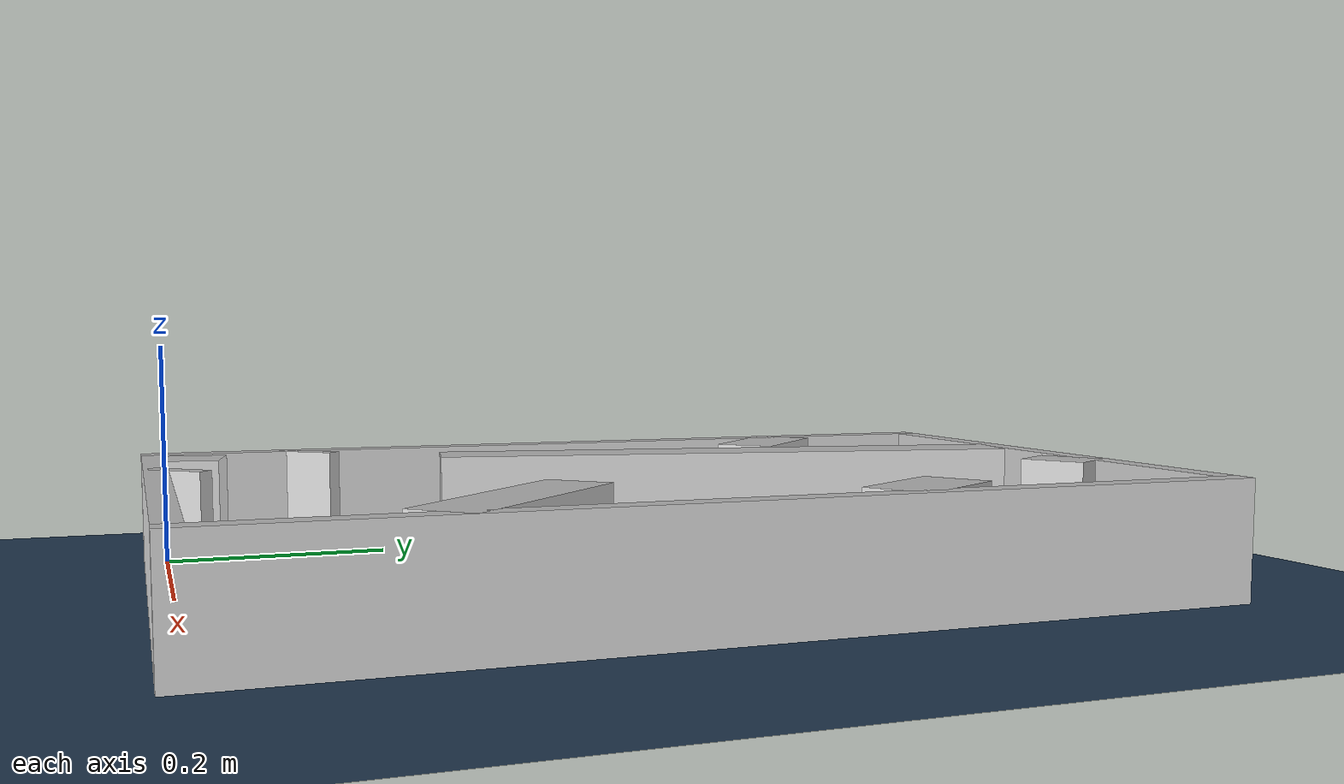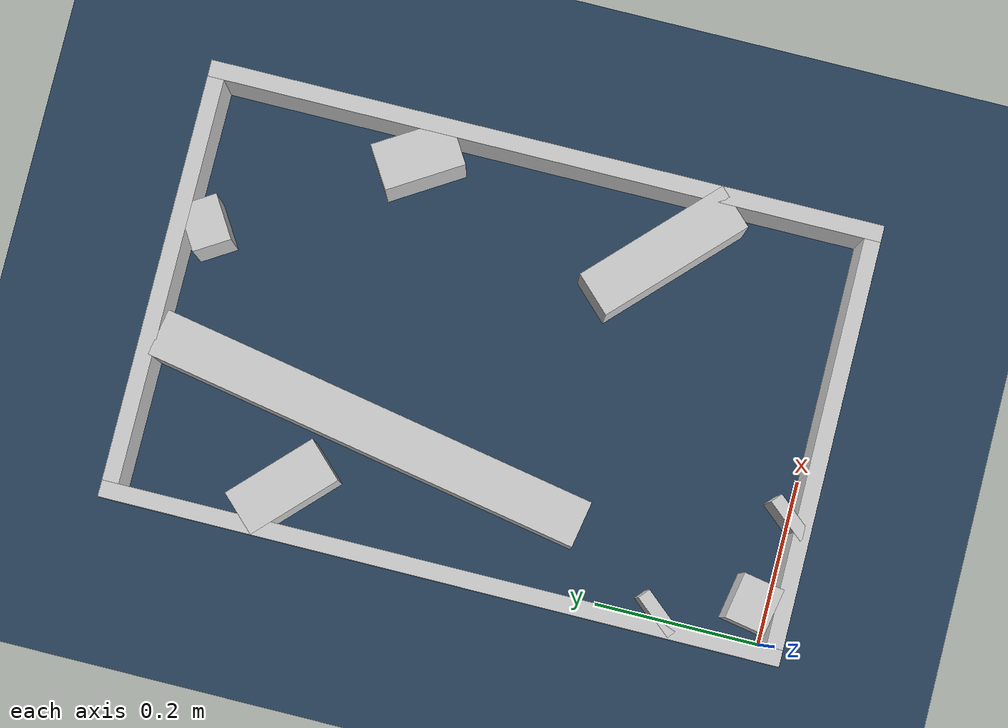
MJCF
<?xml version="1.0" ?>
<mujoco model="generated_real_template">
  <compiler angle="degree"/>
  <option timestep="0.002" integrator="implicitfast" iterations="100" cone="elliptic"/>
  <default>
    <geom density="1"/>
  </default>
  <asset>
    <texture builtin="gradient" height="3072" rgb1="0.3 0.5 0.7" rgb2="0 0 0" type="skybox" width="512"/>
    <texture builtin="checker" height="300" mark="edge" markrgb="0.8 0.8 0.8" name="groundplane" rgb1="0.2 0.3 0.4" rgb2="0.1 0.2 0.3" type="2d" width="300"/>
    <material name="groundplane" reflectance="0.2" texrepeat="5 5" texture="groundplane" texuniform="true"/>
  </asset>
  <worldbody>
    <light dir="0 0 -1" directional="true" pos="0 0 1.5"/>
    <geom name="floor" type="plane" condim="4" friction="0.5 0.005 0.001" material="groundplane" size="0 0 0.05"/>
    <body name="walls">
      <geom name="wall_boundary_left" type="box" condim="4" friction="1.0 0.005 0.0001" rgba="0.8 0.8 0.8 1" pos="-0.010000 0.387500 0.050000" euler="0 0 0.000000" size="0.010000 0.407500 0.050000"/>
      <geom name="wall_boundary_right" type="box" condim="4" friction="1.0 0.005 0.0001" rgba="0.8 0.8 0.8 1" pos="0.500000 0.387500 0.050000" euler="0 0 0.000000" size="0.010000 0.407500 0.050000"/>
      <geom name="wall_boundary_bottom" type="box" condim="4" friction="1.0 0.005 0.0001" rgba="0.8 0.8 0.8 1" pos="0.245000 -0.010000 0.050000" euler="0 0 0.000000" size="0.245000 0.010000 0.050000"/>
      <geom name="wall_boundary_top" type="box" condim="4" friction="1.0 0.005 0.0001" rgba="0.8 0.8 0.8 1" pos="0.245000 0.785000 0.050000" euler="0 0 0.000000" size="0.245000 0.010000 0.050000"/>
      <geom name="wall_inner_1_1" type="box" condim="4" friction="1.0 0.005 0.0001" rgba="0.8 0.8 0.8 1" pos="0.006152 0.129946 0.050000" euler="0 0 -40.334433" size="0.008070 0.028500 0.050000"/>
      <geom name="wall_inner_1_2" type="box" condim="4" friction="1.0 0.005 0.0001" rgba="0.8 0.8 0.8 1" pos="0.151273 0.006724 0.050000" euler="0 0 -40.334433" size="0.007722 0.028500 0.050000"/>
      <geom name="wall_inner_2_1" type="box" condim="4" friction="1.0 0.005 0.0001" rgba="0.8 0.8 0.8 1" pos="0.459586 0.531588 0.050000" euler="0 0 121.878124" size="0.049632 0.028500 0.050000"/>
      <geom name="wall_inner_2_2" type="box" condim="4" friction="1.0 0.005 0.0001" rgba="0.8 0.8 0.8 1" pos="0.320719 0.754878 0.050000" euler="0 0 121.878124" size="0.023696 0.028500 0.050000"/>
      <geom name="wall_inner_3_1" type="box" condim="4" friction="1.0 0.005 0.0001" rgba="0.8 0.8 0.8 1" pos="0.042847 0.590449 0.050000" euler="0 0 -44.231152" size="0.059797 0.028500 0.050000"/>
      <geom name="wall_inner_3_2" type="box" condim="4" friction="1.0 0.005 0.0001" rgba="0.8 0.8 0.8 1" pos="0.419311 0.223956 0.050000" euler="0 0 -44.231152" size="0.098655 0.028500 0.050000"/>
      <geom name="wall_inner_4_1" type="box" condim="4" friction="1.0 0.005 0.0001" rgba="0.8 0.8 0.8 1" pos="0.044379 0.024505 0.050000" euler="0 0 79.539280" size="0.024919 0.028500 0.050000"/>
      <geom name="wall_inner_4_2" type="box" condim="4" friction="1.0 0.005 0.0001" rgba="0.8 0.8 0.8 1" pos="0.133613 0.507817 0.050000" euler="0 0 79.539280" size="0.271699 0.028500 0.050000"/>
    </body>
  </worldbody>
</mujoco>
